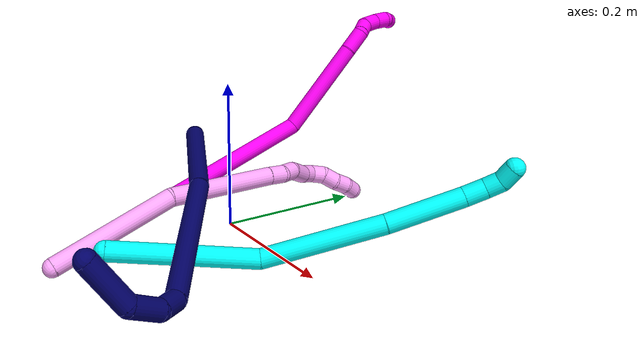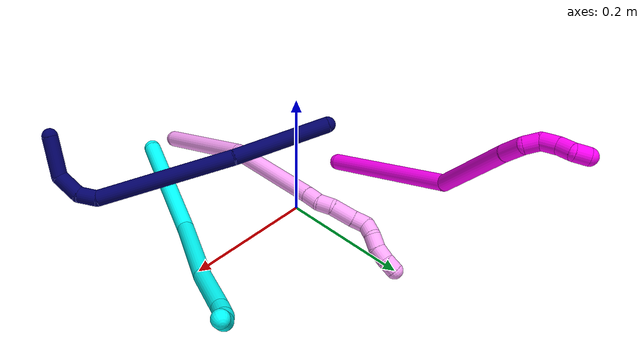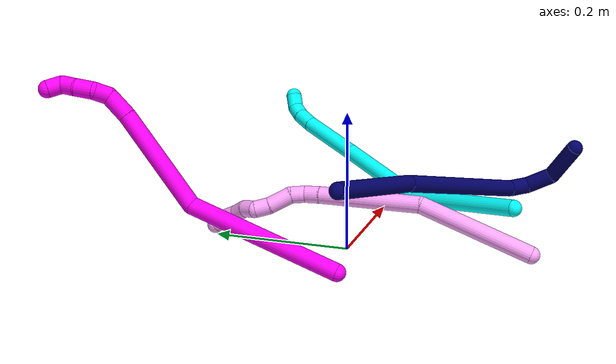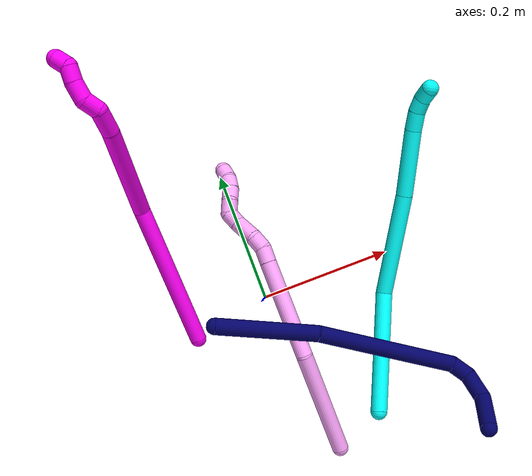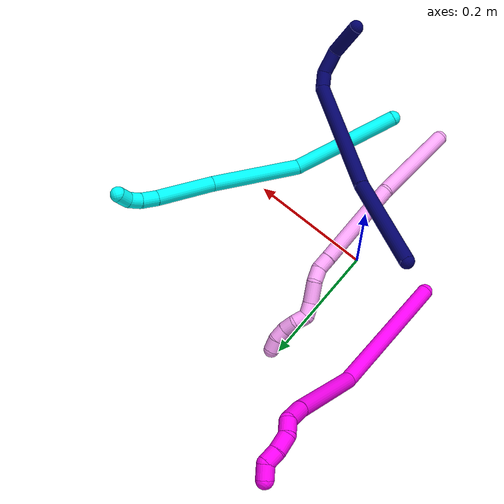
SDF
<sdf version="1.7">
 <world name="default">
  <model name="3">
   <static>0</static>
   <link name="3">
    <collision name="collision-cylinder-e_1_1_4">
     <pose>0.016316 0.017245 0.08682 -0.196077 0.18228 -0.017977</pose>
     <geometry><cylinder><radius>0.0125</radius><length>0.180016</length></cylinder></geometry>
     <surface>
      <friction><ode><mu>1.16</mu><mu2>1.16</mu2><slip1>0</slip1><slip2>0</slip2></ode></friction>
      <contact><ode><kp>1e+06</kp><kd>1</kd><max_vel>0</max_vel><min_depth>0.001</min_depth></ode></contact>
     </surface>
    </collision>
    <visual name="visual-cylinder-e_1_1_4">
     <pose>0.016316 0.017245 0.08682 -0.196077 0.18228 -0.017977</pose>
     <geometry><cylinder><radius>0.0125</radius><length>0.180016</length></cylinder></geometry>
     <material><ambient>0.003922 1 0.996078 1</ambient></material>
    </visual>
    <collision name="collision-cylinder-e_2_4_5">
     <pose>0.023738 0.026837 0.249365 0.10072 -0.116327 -0.00587</pose>
     <geometry><cylinder><radius>0.0125</radius><length>0.153254</length></cylinder></geometry>
     <surface>
      <friction><ode><mu>1.16</mu><mu2>1.16</mu2><slip1>0</slip1><slip2>0</slip2></ode></friction>
      <contact><ode><kp>1e+06</kp><kd>1</kd><max_vel>0</max_vel><min_depth>0.001</min_depth></ode></contact>
     </surface>
    </collision>
    <visual name="visual-cylinder-e_2_4_5">
     <pose>0.023738 0.026837 0.249365 0.10072 -0.116327 -0.00587</pose>
     <geometry><cylinder><radius>0.0125</radius><length>0.153254</length></cylinder></geometry>
     <material><ambient>0.003922 1 0.996078 1</ambient></material>
    </visual>
    <collision name="collision-cylinder-e_3_5_6">
     <pose>0.006036 0.016643 0.372626 0.053424 -0.182962 -0.004902</pose>
     <geometry><cylinder><radius>0.0125</radius><length>0.096829</length></cylinder></geometry>
     <surface>
      <friction><ode><mu>1.16</mu><mu2>1.16</mu2><slip1>0</slip1><slip2>0</slip2></ode></friction>
      <contact><ode><kp>1e+06</kp><kd>1</kd><max_vel>0</max_vel><min_depth>0.001</min_depth></ode></contact>
     </surface>
    </collision>
    <visual name="visual-cylinder-e_3_5_6">
     <pose>0.006036 0.016643 0.372626 0.053424 -0.182962 -0.004902</pose>
     <geometry><cylinder><radius>0.0125</radius><length>0.096829</length></cylinder></geometry>
     <material><ambient>0.003922 1 0.996078 1</ambient></material>
    </visual>
    <collision name="collision-cylinder-e_4_6_7">
     <pose>-0.005766 0.012247 0.433403 0.13908 -0.220312 -0.015407</pose>
     <geometry><cylinder><radius>0.0125</radius><length>0.027398</length></cylinder></geometry>
     <surface>
      <friction><ode><mu>1.16</mu><mu2>1.16</mu2><slip1>0</slip1><slip2>0</slip2></ode></friction>
      <contact><ode><kp>1e+06</kp><kd>1</kd><max_vel>0</max_vel><min_depth>0.001</min_depth></ode></contact>
     </surface>
    </collision>
    <visual name="visual-cylinder-e_4_6_7">
     <pose>-0.005766 0.012247 0.433403 0.13908 -0.220312 -0.015407</pose>
     <geometry><cylinder><radius>0.0125</radius><length>0.027398</length></cylinder></geometry>
     <material><ambient>0.003922 1 0.996078 1</ambient></material>
    </visual>
    <collision name="collision-cylinder-e_5_7_8">
     <pose>-0.011121 0.006761 0.455954 0.372032 -0.231921 -0.043835</pose>
     <geometry><cylinder><radius>0.0125</radius><length>0.020541</length></cylinder></geometry>
     <surface>
      <friction><ode><mu>1.16</mu><mu2>1.16</mu2><slip1>0</slip1><slip2>0</slip2></ode></friction>
      <contact><ode><kp>1e+06</kp><kd>1</kd><max_vel>0</max_vel><min_depth>0.001</min_depth></ode></contact>
     </surface>
    </collision>
    <visual name="visual-cylinder-e_5_7_8">
     <pose>-0.011121 0.006761 0.455954 0.372032 -0.231921 -0.043835</pose>
     <geometry><cylinder><radius>0.0125</radius><length>0.020541</length></cylinder></geometry>
     <material><ambient>0.003922 1 0.996078 1</ambient></material>
    </visual>
    <collision name="collision-cylinder-e_6_8_2">
     <pose>-0.019075 -0.00346 0.472041 0.771345 -0.534485 -0.221413</pose>
     <geometry><cylinder><radius>0.0125</radius><length>0.021962</length></cylinder></geometry>
     <surface>
      <friction><ode><mu>1.16</mu><mu2>1.16</mu2><slip1>0</slip1><slip2>0</slip2></ode></friction>
      <contact><ode><kp>1e+06</kp><kd>1</kd><max_vel>0</max_vel><min_depth>0.001</min_depth></ode></contact>
     </surface>
    </collision>
    <visual name="visual-cylinder-e_6_8_2">
     <pose>-0.019075 -0.00346 0.472041 0.771345 -0.534485 -0.221413</pose>
     <geometry><cylinder><radius>0.0125</radius><length>0.021962</length></cylinder></geometry>
     <material><ambient>0.003922 1 0.996078 1</ambient></material>
    </visual>
    <collision name="collision-sphere-2">
     <pose>-0.024669 -0.010048 0.478816 0 -0 0</pose>
     <geometry><sphere><radius>0.0125</radius></sphere></geometry>
     <surface>
      <friction><ode><mu>1.16</mu><mu2>1.16</mu2><slip1>0</slip1><slip2>0</slip2></ode></friction>
      <contact><ode><kp>1e+06</kp><kd>1</kd><max_vel>0</max_vel><min_depth>0.001</min_depth></ode></contact>
     </surface>
    </collision>
    <visual name="visual-sphere-2">
     <pose>-0.024669 -0.010048 0.478816 0 -0 0</pose>
     <geometry><sphere><radius>0.0125</radius></sphere></geometry>
     <material><ambient>0.003922 1 0.996078 1</ambient></material>
    </visual>
    <collision name="collision-sphere-4">
     <pose>0.032632 0.03449 0.173641 0 -0 0</pose>
     <geometry><sphere><radius>0.0125</radius></sphere></geometry>
     <surface>
      <friction><ode><mu>1.16</mu><mu2>1.16</mu2><slip1>0</slip1><slip2>0</slip2></ode></friction>
      <contact><ode><kp>1e+06</kp><kd>1</kd><max_vel>0</max_vel><min_depth>0.001</min_depth></ode></contact>
     </surface>
    </collision>
    <visual name="visual-sphere-4">
     <pose>0.032632 0.03449 0.173641 0 -0 0</pose>
     <geometry><sphere><radius>0.0125</radius></sphere></geometry>
     <material><ambient>0.003922 1 0.996078 1</ambient></material>
    </visual>
    <collision name="collision-sphere-1">
     <geometry><sphere><radius>0.0125</radius></sphere></geometry>
     <surface>
      <friction><ode><mu>1.16</mu><mu2>1.16</mu2><slip1>0</slip1><slip2>0</slip2></ode></friction>
      <contact><ode><kp>1e+06</kp><kd>1</kd><max_vel>0</max_vel><min_depth>0.001</min_depth></ode></contact>
     </surface>
    </collision>
    <visual name="visual-sphere-1">
     <geometry><sphere><radius>0.0125</radius></sphere></geometry>
     <material><ambient>0.003922 1 0.996078 1</ambient></material>
    </visual>
    <collision name="collision-sphere-8">
     <pose>-0.013482 0.003127 0.465266 0 -0 0</pose>
     <geometry><sphere><radius>0.0125</radius></sphere></geometry>
     <surface>
      <friction><ode><mu>1.16</mu><mu2>1.16</mu2><slip1>0</slip1><slip2>0</slip2></ode></friction>
      <contact><ode><kp>1e+06</kp><kd>1</kd><max_vel>0</max_vel><min_depth>0.001</min_depth></ode></contact>
     </surface>
    </collision>
    <visual name="visual-sphere-8">
     <pose>-0.013482 0.003127 0.465266 0 -0 0</pose>
     <geometry><sphere><radius>0.0125</radius></sphere></geometry>
     <material><ambient>0.003922 1 0.996078 1</ambient></material>
    </visual>
    <collision name="collision-sphere-5">
     <pose>0.014844 0.019185 0.325088 0 -0 0</pose>
     <geometry><sphere><radius>0.0125</radius></sphere></geometry>
     <surface>
      <friction><ode><mu>1.16</mu><mu2>1.16</mu2><slip1>0</slip1><slip2>0</slip2></ode></friction>
      <contact><ode><kp>1e+06</kp><kd>1</kd><max_vel>0</max_vel><min_depth>0.001</min_depth></ode></contact>
     </surface>
    </collision>
    <visual name="visual-sphere-5">
     <pose>0.014844 0.019185 0.325088 0 -0 0</pose>
     <geometry><sphere><radius>0.0125</radius></sphere></geometry>
     <material><ambient>0.003922 1 0.996078 1</ambient></material>
    </visual>
    <collision name="collision-sphere-6">
     <pose>-0.002773 0.0141 0.420165 0 -0 0</pose>
     <geometry><sphere><radius>0.0125</radius></sphere></geometry>
     <surface>
      <friction><ode><mu>1.16</mu><mu2>1.16</mu2><slip1>0</slip1><slip2>0</slip2></ode></friction>
      <contact><ode><kp>1e+06</kp><kd>1</kd><max_vel>0</max_vel><min_depth>0.001</min_depth></ode></contact>
     </surface>
    </collision>
    <visual name="visual-sphere-6">
     <pose>-0.002773 0.0141 0.420165 0 -0 0</pose>
     <geometry><sphere><radius>0.0125</radius></sphere></geometry>
     <material><ambient>0.003922 1 0.996078 1</ambient></material>
    </visual>
    <collision name="collision-sphere-7">
     <pose>-0.00876 0.010394 0.446642 0 -0 0</pose>
     <geometry><sphere><radius>0.0125</radius></sphere></geometry>
     <surface>
      <friction><ode><mu>1.16</mu><mu2>1.16</mu2><slip1>0</slip1><slip2>0</slip2></ode></friction>
      <contact><ode><kp>1e+06</kp><kd>1</kd><max_vel>0</max_vel><min_depth>0.001</min_depth></ode></contact>
     </surface>
    </collision>
    <visual name="visual-sphere-7">
     <pose>-0.00876 0.010394 0.446642 0 -0 0</pose>
     <geometry><sphere><radius>0.0125</radius></sphere></geometry>
     <material><ambient>0.003922 1 0.996078 1</ambient></material>
    </visual>
    <inertial>
     <pose>0.012708 0.018454 0.243067 0 -0 0</pose>
     <mass>0.5</mass>
     <inertia>
      <ixx>0.000859</ixx>
      <ixy>0</ixy>
      <ixz>0</ixz>
      <iyy>0.000861</iyy>
      <iyz>0</iyz>
      <izz>-5.8e-05</izz>
     </inertia>
    </inertial>
   </link>
   <pose>0.100868 -0.220407 0.052137 -1.30751 1.0601 -0.270111</pose>
  </model>
  <model name="4">
   <static>0</static>
   <link name="4">
    <collision name="collision-cylinder-e_1_1_4">
     <pose>0.023287 0.079418 0.016361 -1.36763 0.279662 -0.228419</pose>
     <geometry><cylinder><radius>0.0125</radius><length>0.168727</length></cylinder></geometry>
     <surface>
      <friction><ode><mu>1.16</mu><mu2>1.16</mu2><slip1>0</slip1><slip2>0</slip2></ode></friction>
      <contact><ode><kp>1e+06</kp><kd>1</kd><max_vel>0</max_vel><min_depth>0.001</min_depth></ode></contact>
     </surface>
    </collision>
    <visual name="visual-cylinder-e_1_1_4">
     <pose>0.023287 0.079418 0.016361 -1.36763 0.279662 -0.228419</pose>
     <geometry><cylinder><radius>0.0125</radius><length>0.168727</length></cylinder></geometry>
     <material><ambient>1 0.65098 0.996078 1</ambient></material>
    </visual>
    <collision name="collision-cylinder-e_2_4_5">
     <pose>0.043236 0.232916 0.039133 -1.48448 -0.044857 0.041144</pose>
     <geometry><cylinder><radius>0.0125</radius><length>0.148862</length></cylinder></geometry>
     <surface>
      <friction><ode><mu>1.16</mu><mu2>1.16</mu2><slip1>0</slip1><slip2>0</slip2></ode></friction>
      <contact><ode><kp>1e+06</kp><kd>1</kd><max_vel>0</max_vel><min_depth>0.001</min_depth></ode></contact>
     </surface>
    </collision>
    <visual name="visual-cylinder-e_2_4_5">
     <pose>0.043236 0.232916 0.039133 -1.48448 -0.044857 0.041144</pose>
     <geometry><cylinder><radius>0.0125</radius><length>0.148862</length></cylinder></geometry>
     <material><ambient>1 0.65098 0.996078 1</ambient></material>
    </visual>
    <collision name="collision-cylinder-e_3_5_6">
     <pose>0.038937 0.31847 0.046108 -1.5216 -0.083483 0.079478</pose>
     <geometry><cylinder><radius>0.0125</radius><length>0.023058</length></cylinder></geometry>
     <surface>
      <friction><ode><mu>1.16</mu><mu2>1.16</mu2><slip1>0</slip1><slip2>0</slip2></ode></friction>
      <contact><ode><kp>1e+06</kp><kd>1</kd><max_vel>0</max_vel><min_depth>0.001</min_depth></ode></contact>
     </surface>
    </collision>
    <visual name="visual-cylinder-e_3_5_6">
     <pose>0.038937 0.31847 0.046108 -1.5216 -0.083483 0.079478</pose>
     <geometry><cylinder><radius>0.0125</radius><length>0.023058</length></cylinder></geometry>
     <material><ambient>1 0.65098 0.996078 1</ambient></material>
    </visual>
    <collision name="collision-cylinder-e_4_6_7">
     <pose>0.035747 0.339521 0.050712 -1.17165 -0.211276 0.140479</pose>
     <geometry><cylinder><radius>0.0125</radius><length>0.021258</length></cylinder></geometry>
     <surface>
      <friction><ode><mu>1.16</mu><mu2>1.16</mu2><slip1>0</slip1><slip2>0</slip2></ode></friction>
      <contact><ode><kp>1e+06</kp><kd>1</kd><max_vel>0</max_vel><min_depth>0.001</min_depth></ode></contact>
     </surface>
    </collision>
    <visual name="visual-cylinder-e_4_6_7">
     <pose>0.035747 0.339521 0.050712 -1.17165 -0.211276 0.140479</pose>
     <geometry><cylinder><radius>0.0125</radius><length>0.021258</length></cylinder></geometry>
     <material><ambient>1 0.65098 0.996078 1</ambient></material>
    </visual>
    <collision name="collision-cylinder-e_5_7_8">
     <pose>0.023451 0.362197 0.060134 -1.18092 -0.617891 0.421473</pose>
     <geometry><cylinder><radius>0.0125</radius><length>0.034753</length></cylinder></geometry>
     <surface>
      <friction><ode><mu>1.16</mu><mu2>1.16</mu2><slip1>0</slip1><slip2>0</slip2></ode></friction>
      <contact><ode><kp>1e+06</kp><kd>1</kd><max_vel>0</max_vel><min_depth>0.001</min_depth></ode></contact>
     </surface>
    </collision>
    <visual name="visual-cylinder-e_5_7_8">
     <pose>0.023451 0.362197 0.060134 -1.18092 -0.617891 0.421473</pose>
     <geometry><cylinder><radius>0.0125</radius><length>0.034753</length></cylinder></geometry>
     <material><ambient>1 0.65098 0.996078 1</ambient></material>
    </visual>
    <collision name="collision-cylinder-e_6_8_9">
     <pose>0.009271 0.384551 0.068988 -1.2119 -0.394426 0.27515</pose>
     <geometry><cylinder><radius>0.0125</radius><length>0.021411</length></cylinder></geometry>
     <surface>
      <friction><ode><mu>1.16</mu><mu2>1.16</mu2><slip1>0</slip1><slip2>0</slip2></ode></friction>
      <contact><ode><kp>1e+06</kp><kd>1</kd><max_vel>0</max_vel><min_depth>0.001</min_depth></ode></contact>
     </surface>
    </collision>
    <visual name="visual-cylinder-e_6_8_9">
     <pose>0.009271 0.384551 0.068988 -1.2119 -0.394426 0.27515</pose>
     <geometry><cylinder><radius>0.0125</radius><length>0.021411</length></cylinder></geometry>
     <material><ambient>1 0.65098 0.996078 1</ambient></material>
    </visual>
    <collision name="collision-cylinder-e_7_9_10">
     <pose>0.004616 0.403391 0.068846 -1.93133 -0.052811 0.076331</pose>
     <geometry><cylinder><radius>0.0125</radius><length>0.020517</length></cylinder></geometry>
     <surface>
      <friction><ode><mu>1.16</mu><mu2>1.16</mu2><slip1>0</slip1><slip2>0</slip2></ode></friction>
      <contact><ode><kp>1e+06</kp><kd>1</kd><max_vel>0</max_vel><min_depth>0.001</min_depth></ode></contact>
     </surface>
    </collision>
    <visual name="visual-cylinder-e_7_9_10">
     <pose>0.004616 0.403391 0.068846 -1.93133 -0.052811 0.076331</pose>
     <geometry><cylinder><radius>0.0125</radius><length>0.020517</length></cylinder></geometry>
     <material><ambient>1 0.65098 0.996078 1</ambient></material>
    </visual>
    <collision name="collision-cylinder-e_8_10_11">
     <pose>-0.000211 0.421287 0.060644 -2.07524 -0.423996 0.699386</pose>
     <geometry><cylinder><radius>0.0125</radius><length>0.020831</length></cylinder></geometry>
     <surface>
      <friction><ode><mu>1.16</mu><mu2>1.16</mu2><slip1>0</slip1><slip2>0</slip2></ode></friction>
      <contact><ode><kp>1e+06</kp><kd>1</kd><max_vel>0</max_vel><min_depth>0.001</min_depth></ode></contact>
     </surface>
    </collision>
    <visual name="visual-cylinder-e_8_10_11">
     <pose>-0.000211 0.421287 0.060644 -2.07524 -0.423996 0.699386</pose>
     <geometry><cylinder><radius>0.0125</radius><length>0.020831</length></cylinder></geometry>
     <material><ambient>1 0.65098 0.996078 1</ambient></material>
    </visual>
    <collision name="collision-cylinder-e_9_11_12">
     <pose>-0.008728 0.438624 0.054173 -1.77642 -0.43033 0.525252</pose>
     <geometry><cylinder><radius>0.0125</radius><length>0.020291</length></cylinder></geometry>
     <surface>
      <friction><ode><mu>1.16</mu><mu2>1.16</mu2><slip1>0</slip1><slip2>0</slip2></ode></friction>
      <contact><ode><kp>1e+06</kp><kd>1</kd><max_vel>0</max_vel><min_depth>0.001</min_depth></ode></contact>
     </surface>
    </collision>
    <visual name="visual-cylinder-e_9_11_12">
     <pose>-0.008728 0.438624 0.054173 -1.77642 -0.43033 0.525252</pose>
     <geometry><cylinder><radius>0.0125</radius><length>0.020291</length></cylinder></geometry>
     <material><ambient>1 0.65098 0.996078 1</ambient></material>
    </visual>
    <collision name="collision-cylinder-e_10_12_2">
     <pose>-0.019466 0.455436 0.052217 -1.58021 -0.696018 0.702073</pose>
     <geometry><cylinder><radius>0.0125</radius><length>0.020292</length></cylinder></geometry>
     <surface>
      <friction><ode><mu>1.16</mu><mu2>1.16</mu2><slip1>0</slip1><slip2>0</slip2></ode></friction>
      <contact><ode><kp>1e+06</kp><kd>1</kd><max_vel>0</max_vel><min_depth>0.001</min_depth></ode></contact>
     </surface>
    </collision>
    <visual name="visual-cylinder-e_10_12_2">
     <pose>-0.019466 0.455436 0.052217 -1.58021 -0.696018 0.702073</pose>
     <geometry><cylinder><radius>0.0125</radius><length>0.020292</length></cylinder></geometry>
     <material><ambient>1 0.65098 0.996078 1</ambient></material>
    </visual>
    <collision name="collision-sphere-2">
     <pose>-0.025971 0.463222 0.052144 0 -0 0</pose>
     <geometry><sphere><radius>0.0125</radius></sphere></geometry>
     <surface>
      <friction><ode><mu>1.16</mu><mu2>1.16</mu2><slip1>0</slip1><slip2>0</slip2></ode></friction>
      <contact><ode><kp>1e+06</kp><kd>1</kd><max_vel>0</max_vel><min_depth>0.001</min_depth></ode></contact>
     </surface>
    </collision>
    <visual name="visual-sphere-2">
     <pose>-0.025971 0.463222 0.052144 0 -0 0</pose>
     <geometry><sphere><radius>0.0125</radius></sphere></geometry>
     <material><ambient>1 0.65098 0.996078 1</ambient></material>
    </visual>
    <collision name="collision-sphere-12">
     <pose>-0.012961 0.447651 0.05229 0 -0 0</pose>
     <geometry><sphere><radius>0.0125</radius></sphere></geometry>
     <surface>
      <friction><ode><mu>1.16</mu><mu2>1.16</mu2><slip1>0</slip1><slip2>0</slip2></ode></friction>
      <contact><ode><kp>1e+06</kp><kd>1</kd><max_vel>0</max_vel><min_depth>0.001</min_depth></ode></contact>
     </surface>
    </collision>
    <visual name="visual-sphere-12">
     <pose>-0.012961 0.447651 0.05229 0 -0 0</pose>
     <geometry><sphere><radius>0.0125</radius></sphere></geometry>
     <material><ambient>1 0.65098 0.996078 1</ambient></material>
    </visual>
    <collision name="collision-sphere-11">
     <pose>-0.004496 0.429598 0.056056 0 -0 0</pose>
     <geometry><sphere><radius>0.0125</radius></sphere></geometry>
     <surface>
      <friction><ode><mu>1.16</mu><mu2>1.16</mu2><slip1>0</slip1><slip2>0</slip2></ode></friction>
      <contact><ode><kp>1e+06</kp><kd>1</kd><max_vel>0</max_vel><min_depth>0.001</min_depth></ode></contact>
     </surface>
    </collision>
    <visual name="visual-sphere-11">
     <pose>-0.004496 0.429598 0.056056 0 -0 0</pose>
     <geometry><sphere><radius>0.0125</radius></sphere></geometry>
     <material><ambient>1 0.65098 0.996078 1</ambient></material>
    </visual>
    <collision name="collision-sphere-10">
     <pose>0.004074 0.412976 0.065232 0 -0 0</pose>
     <geometry><sphere><radius>0.0125</radius></sphere></geometry>
     <surface>
      <friction><ode><mu>1.16</mu><mu2>1.16</mu2><slip1>0</slip1><slip2>0</slip2></ode></friction>
      <contact><ode><kp>1e+06</kp><kd>1</kd><max_vel>0</max_vel><min_depth>0.001</min_depth></ode></contact>
     </surface>
    </collision>
    <visual name="visual-sphere-10">
     <pose>0.004074 0.412976 0.065232 0 -0 0</pose>
     <geometry><sphere><radius>0.0125</radius></sphere></geometry>
     <material><ambient>1 0.65098 0.996078 1</ambient></material>
    </visual>
    <collision name="collision-sphere-9">
     <pose>0.005157 0.393805 0.07246 0 -0 0</pose>
     <geometry><sphere><radius>0.0125</radius></sphere></geometry>
     <surface>
      <friction><ode><mu>1.16</mu><mu2>1.16</mu2><slip1>0</slip1><slip2>0</slip2></ode></friction>
      <contact><ode><kp>1e+06</kp><kd>1</kd><max_vel>0</max_vel><min_depth>0.001</min_depth></ode></contact>
     </surface>
    </collision>
    <visual name="visual-sphere-9">
     <pose>0.005157 0.393805 0.07246 0 -0 0</pose>
     <geometry><sphere><radius>0.0125</radius></sphere></geometry>
     <material><ambient>1 0.65098 0.996078 1</ambient></material>
    </visual>
    <collision name="collision-sphere-4">
     <pose>0.046574 0.158836 0.032722 0 -0 0</pose>
     <geometry><sphere><radius>0.0125</radius></sphere></geometry>
     <surface>
      <friction><ode><mu>1.16</mu><mu2>1.16</mu2><slip1>0</slip1><slip2>0</slip2></ode></friction>
      <contact><ode><kp>1e+06</kp><kd>1</kd><max_vel>0</max_vel><min_depth>0.001</min_depth></ode></contact>
     </surface>
    </collision>
    <visual name="visual-sphere-4">
     <pose>0.046574 0.158836 0.032722 0 -0 0</pose>
     <geometry><sphere><radius>0.0125</radius></sphere></geometry>
     <material><ambient>1 0.65098 0.996078 1</ambient></material>
    </visual>
    <collision name="collision-sphere-1">
     <geometry><sphere><radius>0.0125</radius></sphere></geometry>
     <surface>
      <friction><ode><mu>1.16</mu><mu2>1.16</mu2><slip1>0</slip1><slip2>0</slip2></ode></friction>
      <contact><ode><kp>1e+06</kp><kd>1</kd><max_vel>0</max_vel><min_depth>0.001</min_depth></ode></contact>
     </surface>
    </collision>
    <visual name="visual-sphere-1">
     <geometry><sphere><radius>0.0125</radius></sphere></geometry>
     <material><ambient>1 0.65098 0.996078 1</ambient></material>
    </visual>
    <collision name="collision-sphere-8">
     <pose>0.013385 0.375297 0.065517 0 -0 0</pose>
     <geometry><sphere><radius>0.0125</radius></sphere></geometry>
     <surface>
      <friction><ode><mu>1.16</mu><mu2>1.16</mu2><slip1>0</slip1><slip2>0</slip2></ode></friction>
      <contact><ode><kp>1e+06</kp><kd>1</kd><max_vel>0</max_vel><min_depth>0.001</min_depth></ode></contact>
     </surface>
    </collision>
    <visual name="visual-sphere-8">
     <pose>0.013385 0.375297 0.065517 0 -0 0</pose>
     <geometry><sphere><radius>0.0125</radius></sphere></geometry>
     <material><ambient>1 0.65098 0.996078 1</ambient></material>
    </visual>
    <collision name="collision-sphere-5">
     <pose>0.039899 0.306995 0.045543 0 -0 0</pose>
     <geometry><sphere><radius>0.0125</radius></sphere></geometry>
     <surface>
      <friction><ode><mu>1.16</mu><mu2>1.16</mu2><slip1>0</slip1><slip2>0</slip2></ode></friction>
      <contact><ode><kp>1e+06</kp><kd>1</kd><max_vel>0</max_vel><min_depth>0.001</min_depth></ode></contact>
     </surface>
    </collision>
    <visual name="visual-sphere-5">
     <pose>0.039899 0.306995 0.045543 0 -0 0</pose>
     <geometry><sphere><radius>0.0125</radius></sphere></geometry>
     <material><ambient>1 0.65098 0.996078 1</ambient></material>
    </visual>
    <collision name="collision-sphere-6">
     <pose>0.037976 0.329945 0.046673 0 -0 0</pose>
     <geometry><sphere><radius>0.0125</radius></sphere></geometry>
     <surface>
      <friction><ode><mu>1.16</mu><mu2>1.16</mu2><slip1>0</slip1><slip2>0</slip2></ode></friction>
      <contact><ode><kp>1e+06</kp><kd>1</kd><max_vel>0</max_vel><min_depth>0.001</min_depth></ode></contact>
     </surface>
    </collision>
    <visual name="visual-sphere-6">
     <pose>0.037976 0.329945 0.046673 0 -0 0</pose>
     <geometry><sphere><radius>0.0125</radius></sphere></geometry>
     <material><ambient>1 0.65098 0.996078 1</ambient></material>
    </visual>
    <collision name="collision-sphere-7">
     <pose>0.033518 0.349096 0.054751 0 -0 0</pose>
     <geometry><sphere><radius>0.0125</radius></sphere></geometry>
     <surface>
      <friction><ode><mu>1.16</mu><mu2>1.16</mu2><slip1>0</slip1><slip2>0</slip2></ode></friction>
      <contact><ode><kp>1e+06</kp><kd>1</kd><max_vel>0</max_vel><min_depth>0.001</min_depth></ode></contact>
     </surface>
    </collision>
    <visual name="visual-sphere-7">
     <pose>0.033518 0.349096 0.054751 0 -0 0</pose>
     <geometry><sphere><radius>0.0125</radius></sphere></geometry>
     <material><ambient>1 0.65098 0.996078 1</ambient></material>
    </visual>
    <inertial>
     <pose>0.02511 0.237296 0.038257 0 -0 0</pose>
     <mass>0.5</mass>
     <inertia><ixx>0.0006</ixx><ixy>0</ixy><ixz>0</ixz><iyy>9.8e-05</iyy><iyz>0</iyz><izz>-0.000765</izz></inertia>
    </inertial>
   </link>
   <pose>0.026435 -0.259521 0.011498 0.036838 -1.21167 -0.121774</pose>
  </model>
  <model name="7">
   <static>0</static>
   <link name="7">
    <collision name="collision-cylinder-e_1_1_4">
     <pose>-0.007891 -0.067796 -0.034076 2.03654 -0.103628 -0.167823</pose>
     <geometry><cylinder><radius>0.0125</radius><length>0.152574</length></cylinder></geometry>
     <surface>
      <friction><ode><mu>1.16</mu><mu2>1.16</mu2><slip1>0</slip1><slip2>0</slip2></ode></friction>
      <contact><ode><kp>1e+06</kp><kd>1</kd><max_vel>0</max_vel><min_depth>0.001</min_depth></ode></contact>
     </surface>
    </collision>
    <visual name="visual-cylinder-e_1_1_4">
     <pose>-0.007891 -0.067796 -0.034076 2.03654 -0.103628 -0.167823</pose>
     <geometry><cylinder><radius>0.0125</radius><length>0.152574</length></cylinder></geometry>
     <material><ambient>0.003922 0 0.403922 1</ambient></material>
    </visual>
    <collision name="collision-cylinder-e_2_4_5">
     <pose>-0.014807 -0.237018 -0.104161 1.91195 0.009067 0.01284</pose>
     <geometry><cylinder><radius>0.0125</radius><length>0.215266</length></cylinder></geometry>
     <surface>
      <friction><ode><mu>1.16</mu><mu2>1.16</mu2><slip1>0</slip1><slip2>0</slip2></ode></friction>
      <contact><ode><kp>1e+06</kp><kd>1</kd><max_vel>0</max_vel><min_depth>0.001</min_depth></ode></contact>
     </surface>
    </collision>
    <visual name="visual-cylinder-e_2_4_5">
     <pose>-0.014807 -0.237018 -0.104161 1.91195 0.009067 0.01284</pose>
     <geometry><cylinder><radius>0.0125</radius><length>0.215266</length></cylinder></geometry>
     <material><ambient>0.003922 0 0.403922 1</ambient></material>
    </visual>
    <collision name="collision-cylinder-e_3_5_6">
     <pose>-0.006877 -0.349971 -0.146065 2.04357 0.492881 0.780256</pose>
     <geometry><cylinder><radius>0.0125</radius><length>0.029392</length></cylinder></geometry>
     <surface>
      <friction><ode><mu>1.16</mu><mu2>1.16</mu2><slip1>0</slip1><slip2>0</slip2></ode></friction>
      <contact><ode><kp>1e+06</kp><kd>1</kd><max_vel>0</max_vel><min_depth>0.001</min_depth></ode></contact>
     </surface>
    </collision>
    <visual name="visual-cylinder-e_3_5_6">
     <pose>-0.006877 -0.349971 -0.146065 2.04357 0.492881 0.780256</pose>
     <geometry><cylinder><radius>0.0125</radius><length>0.029392</length></cylinder></geometry>
     <material><ambient>0.003922 0 0.403922 1</ambient></material>
    </visual>
    <collision name="collision-cylinder-e_4_6_7">
     <pose>0.01685 -0.369549 -0.159709 2.33695 0.983133 1.79848</pose>
     <geometry><cylinder><radius>0.0125</radius><length>0.040309</length></cylinder></geometry>
     <surface>
      <friction><ode><mu>1.16</mu><mu2>1.16</mu2><slip1>0</slip1><slip2>0</slip2></ode></friction>
      <contact><ode><kp>1e+06</kp><kd>1</kd><max_vel>0</max_vel><min_depth>0.001</min_depth></ode></contact>
     </surface>
    </collision>
    <visual name="visual-cylinder-e_4_6_7">
     <pose>0.01685 -0.369549 -0.159709 2.33695 0.983133 1.79848</pose>
     <geometry><cylinder><radius>0.0125</radius><length>0.040309</length></cylinder></geometry>
     <material><ambient>0.003922 0 0.403922 1</ambient></material>
    </visual>
    <collision name="collision-cylinder-e_5_7_2">
     <pose>0.060803 -0.370103 -0.180884 -2.63232 1.05585 -2.30195</pose>
     <geometry><cylinder><radius>0.0125</radius><length>0.062459</length></cylinder></geometry>
     <surface>
      <friction><ode><mu>1.16</mu><mu2>1.16</mu2><slip1>0</slip1><slip2>0</slip2></ode></friction>
      <contact><ode><kp>1e+06</kp><kd>1</kd><max_vel>0</max_vel><min_depth>0.001</min_depth></ode></contact>
     </surface>
    </collision>
    <visual name="visual-cylinder-e_5_7_2">
     <pose>0.060803 -0.370103 -0.180884 -2.63232 1.05585 -2.30195</pose>
     <geometry><cylinder><radius>0.0125</radius><length>0.062459</length></cylinder></geometry>
     <material><ambient>0.003922 0 0.403922 1</ambient></material>
    </visual>
    <collision name="collision-sphere-2">
     <pose>0.087982 -0.362604 -0.194313 0 -0 0</pose>
     <geometry><sphere><radius>0.0125</radius></sphere></geometry>
     <surface>
      <friction><ode><mu>1.16</mu><mu2>1.16</mu2><slip1>0</slip1><slip2>0</slip2></ode></friction>
      <contact><ode><kp>1e+06</kp><kd>1</kd><max_vel>0</max_vel><min_depth>0.001</min_depth></ode></contact>
     </surface>
    </collision>
    <visual name="visual-sphere-2">
     <pose>0.087982 -0.362604 -0.194313 0 -0 0</pose>
     <geometry><sphere><radius>0.0125</radius></sphere></geometry>
     <material><ambient>0.003922 0 0.403922 1</ambient></material>
    </visual>
    <collision name="collision-sphere-7">
     <pose>0.033623 -0.377601 -0.167456 0 -0 0</pose>
     <geometry><sphere><radius>0.0125</radius></sphere></geometry>
     <surface>
      <friction><ode><mu>1.16</mu><mu2>1.16</mu2><slip1>0</slip1><slip2>0</slip2></ode></friction>
      <contact><ode><kp>1e+06</kp><kd>1</kd><max_vel>0</max_vel><min_depth>0.001</min_depth></ode></contact>
     </surface>
    </collision>
    <visual name="visual-sphere-7">
     <pose>0.033623 -0.377601 -0.167456 0 -0 0</pose>
     <geometry><sphere><radius>0.0125</radius></sphere></geometry>
     <material><ambient>0.003922 0 0.403922 1</ambient></material>
    </visual>
    <collision name="collision-sphere-6">
     <pose>7.6e-05 -0.361498 -0.151961 0 -0 0</pose>
     <geometry><sphere><radius>0.0125</radius></sphere></geometry>
     <surface>
      <friction><ode><mu>1.16</mu><mu2>1.16</mu2><slip1>0</slip1><slip2>0</slip2></ode></friction>
      <contact><ode><kp>1e+06</kp><kd>1</kd><max_vel>0</max_vel><min_depth>0.001</min_depth></ode></contact>
     </surface>
    </collision>
    <visual name="visual-sphere-6">
     <pose>7.6e-05 -0.361498 -0.151961 0 -0 0</pose>
     <geometry><sphere><radius>0.0125</radius></sphere></geometry>
     <material><ambient>0.003922 0 0.403922 1</ambient></material>
    </visual>
    <collision name="collision-sphere-5">
     <pose>-0.013831 -0.338444 -0.14017 0 -0 0</pose>
     <geometry><sphere><radius>0.0125</radius></sphere></geometry>
     <surface>
      <friction><ode><mu>1.16</mu><mu2>1.16</mu2><slip1>0</slip1><slip2>0</slip2></ode></friction>
      <contact><ode><kp>1e+06</kp><kd>1</kd><max_vel>0</max_vel><min_depth>0.001</min_depth></ode></contact>
     </surface>
    </collision>
    <visual name="visual-sphere-5">
     <pose>-0.013831 -0.338444 -0.14017 0 -0 0</pose>
     <geometry><sphere><radius>0.0125</radius></sphere></geometry>
     <material><ambient>0.003922 0 0.403922 1</ambient></material>
    </visual>
    <collision name="collision-sphere-1">
     <geometry><sphere><radius>0.0125</radius></sphere></geometry>
     <surface>
      <friction><ode><mu>1.16</mu><mu2>1.16</mu2><slip1>0</slip1><slip2>0</slip2></ode></friction>
      <contact><ode><kp>1e+06</kp><kd>1</kd><max_vel>0</max_vel><min_depth>0.001</min_depth></ode></contact>
     </surface>
    </collision>
    <visual name="visual-sphere-1">
     <geometry><sphere><radius>0.0125</radius></sphere></geometry>
     <material><ambient>0.003922 0 0.403922 1</ambient></material>
    </visual>
    <collision name="collision-sphere-4">
     <pose>-0.015783 -0.135592 -0.068151 0 -0 0</pose>
     <geometry><sphere><radius>0.0125</radius></sphere></geometry>
     <surface>
      <friction><ode><mu>1.16</mu><mu2>1.16</mu2><slip1>0</slip1><slip2>0</slip2></ode></friction>
      <contact><ode><kp>1e+06</kp><kd>1</kd><max_vel>0</max_vel><min_depth>0.001</min_depth></ode></contact>
     </surface>
    </collision>
    <visual name="visual-sphere-4">
     <pose>-0.015783 -0.135592 -0.068151 0 -0 0</pose>
     <geometry><sphere><radius>0.0125</radius></sphere></geometry>
     <material><ambient>0.003922 0 0.403922 1</ambient></material>
    </visual>
    <inertial>
     <pose>-0.000233 -0.219329 -0.0993 0 -0 0</pose>
     <mass>0.5</mass>
     <inertia>
      <ixx>0.001094</ixx>
      <ixy>0</ixy>
      <ixz>0</ixz>
      <iyy>-0.000455</iyy>
      <iyz>0</iyz>
      <izz>0.001041</izz>
     </inertia>
    </inertial>
   </link>
   <pose>-0.079137 -0.011312 0.112259 2.55045 -0.424923 -2.05659</pose>
  </model>
  <model name="10">
   <static>0</static>
   <link name="10">
    <collision name="collision-cylinder-e_1_1_4">
     <pose>-0.028382 -0.000216 0.106489 0.002032 -0.260466 -0.000266</pose>
     <geometry><cylinder><radius>0.0125</radius><length>0.220414</length></cylinder></geometry>
     <surface>
      <friction><ode><mu>1.16</mu><mu2>1.16</mu2><slip1>0</slip1><slip2>0</slip2></ode></friction>
      <contact><ode><kp>1e+06</kp><kd>1</kd><max_vel>0</max_vel><min_depth>0.001</min_depth></ode></contact>
     </surface>
    </collision>
    <visual name="visual-cylinder-e_1_1_4">
     <pose>-0.028382 -0.000216 0.106489 0.002032 -0.260466 -0.000266</pose>
     <geometry><cylinder><radius>0.0125</radius><length>0.220414</length></cylinder></geometry>
     <material><ambient>1 0 0.964706 1</ambient></material>
    </visual>
    <collision name="collision-cylinder-e_2_4_5">
     <pose>-0.097413 0.029164 0.270053 -0.478389 -0.563806 0.141019</pose>
     <geometry><cylinder><radius>0.0125</radius><length>0.15213</length></cylinder></geometry>
     <surface>
      <friction><ode><mu>1.16</mu><mu2>1.16</mu2><slip1>0</slip1><slip2>0</slip2></ode></friction>
      <contact><ode><kp>1e+06</kp><kd>1</kd><max_vel>0</max_vel><min_depth>0.001</min_depth></ode></contact>
     </surface>
    </collision>
    <visual name="visual-cylinder-e_2_4_5">
     <pose>-0.097413 0.029164 0.270053 -0.478389 -0.563806 0.141019</pose>
     <geometry><cylinder><radius>0.0125</radius><length>0.15213</length></cylinder></geometry>
     <material><ambient>1 0 0.964706 1</ambient></material>
    </visual>
    <collision name="collision-cylinder-e_3_5_6">
     <pose>-0.145824 0.065814 0.342153 -0.438879 -0.437387 0.099055</pose>
     <geometry><cylinder><radius>0.0125</radius><length>0.036646</length></cylinder></geometry>
     <surface>
      <friction><ode><mu>1.16</mu><mu2>1.16</mu2><slip1>0</slip1><slip2>0</slip2></ode></friction>
      <contact><ode><kp>1e+06</kp><kd>1</kd><max_vel>0</max_vel><min_depth>0.001</min_depth></ode></contact>
     </surface>
    </collision>
    <visual name="visual-cylinder-e_3_5_6">
     <pose>-0.145824 0.065814 0.342153 -0.438879 -0.437387 0.099055</pose>
     <geometry><cylinder><radius>0.0125</radius><length>0.036646</length></cylinder></geometry>
     <material><ambient>1 0 0.964706 1</ambient></material>
    </visual>
    <collision name="collision-cylinder-e_4_6_7">
     <pose>-0.151498 0.07706 0.367652 -0.38084 0.182886 -0.035347</pose>
     <geometry><cylinder><radius>0.0125</radius><length>0.022948</length></cylinder></geometry>
     <surface>
      <friction><ode><mu>1.16</mu><mu2>1.16</mu2><slip1>0</slip1><slip2>0</slip2></ode></friction>
      <contact><ode><kp>1e+06</kp><kd>1</kd><max_vel>0</max_vel><min_depth>0.001</min_depth></ode></contact>
     </surface>
    </collision>
    <visual name="visual-cylinder-e_4_6_7">
     <pose>-0.151498 0.07706 0.367652 -0.38084 0.182886 -0.035347</pose>
     <geometry><cylinder><radius>0.0125</radius><length>0.022948</length></cylinder></geometry>
     <material><ambient>1 0 0.964706 1</ambient></material>
    </visual>
    <collision name="collision-cylinder-e_5_7_8">
     <pose>-0.150067 0.079904 0.390628 0.107549 -0.052109 -0.002805</pose>
     <geometry><cylinder><radius>0.0125</radius><length>0.025182</length></cylinder></geometry>
     <surface>
      <friction><ode><mu>1.16</mu><mu2>1.16</mu2><slip1>0</slip1><slip2>0</slip2></ode></friction>
      <contact><ode><kp>1e+06</kp><kd>1</kd><max_vel>0</max_vel><min_depth>0.001</min_depth></ode></contact>
     </surface>
    </collision>
    <visual name="visual-cylinder-e_5_7_8">
     <pose>-0.150067 0.079904 0.390628 0.107549 -0.052109 -0.002805</pose>
     <geometry><cylinder><radius>0.0125</radius><length>0.025182</length></cylinder></geometry>
     <material><ambient>1 0 0.964706 1</ambient></material>
    </visual>
    <collision name="collision-cylinder-e_6_8_9">
     <pose>-0.152806 0.075968 0.413366 0.247537 -0.194835 -0.024314</pose>
     <geometry><cylinder><radius>0.0125</radius><length>0.021526</length></cylinder></geometry>
     <surface>
      <friction><ode><mu>1.16</mu><mu2>1.16</mu2><slip1>0</slip1><slip2>0</slip2></ode></friction>
      <contact><ode><kp>1e+06</kp><kd>1</kd><max_vel>0</max_vel><min_depth>0.001</min_depth></ode></contact>
     </surface>
    </collision>
    <visual name="visual-cylinder-e_6_8_9">
     <pose>-0.152806 0.075968 0.413366 0.247537 -0.194835 -0.024314</pose>
     <geometry><cylinder><radius>0.0125</radius><length>0.021526</length></cylinder></geometry>
     <material><ambient>1 0 0.964706 1</ambient></material>
    </visual>
    <collision name="collision-cylinder-e_7_9_2">
     <pose>-0.149198 0.071795 0.432377 0.178743 0.56823 0.052323</pose>
     <geometry><cylinder><radius>0.0125</radius><length>0.021155</length></cylinder></geometry>
     <surface>
      <friction><ode><mu>1.16</mu><mu2>1.16</mu2><slip1>0</slip1><slip2>0</slip2></ode></friction>
      <contact><ode><kp>1e+06</kp><kd>1</kd><max_vel>0</max_vel><min_depth>0.001</min_depth></ode></contact>
     </surface>
    </collision>
    <visual name="visual-cylinder-e_7_9_2">
     <pose>-0.149198 0.071795 0.432377 0.178743 0.56823 0.052323</pose>
     <geometry><cylinder><radius>0.0125</radius><length>0.021155</length></cylinder></geometry>
     <material><ambient>1 0 0.964706 1</ambient></material>
    </visual>
    <collision name="collision-sphere-2">
     <pose>-0.143506 0.07021 0.44115 0 -0 0</pose>
     <geometry><sphere><radius>0.0125</radius></sphere></geometry>
     <surface>
      <friction><ode><mu>1.16</mu><mu2>1.16</mu2><slip1>0</slip1><slip2>0</slip2></ode></friction>
      <contact><ode><kp>1e+06</kp><kd>1</kd><max_vel>0</max_vel><min_depth>0.001</min_depth></ode></contact>
     </surface>
    </collision>
    <visual name="visual-sphere-2">
     <pose>-0.143506 0.07021 0.44115 0 -0 0</pose>
     <geometry><sphere><radius>0.0125</radius></sphere></geometry>
     <material><ambient>1 0 0.964706 1</ambient></material>
    </visual>
    <collision name="collision-sphere-9">
     <pose>-0.15489 0.07338 0.423604 0 -0 0</pose>
     <geometry><sphere><radius>0.0125</radius></sphere></geometry>
     <surface>
      <friction><ode><mu>1.16</mu><mu2>1.16</mu2><slip1>0</slip1><slip2>0</slip2></ode></friction>
      <contact><ode><kp>1e+06</kp><kd>1</kd><max_vel>0</max_vel><min_depth>0.001</min_depth></ode></contact>
     </surface>
    </collision>
    <visual name="visual-sphere-9">
     <pose>-0.15489 0.07338 0.423604 0 -0 0</pose>
     <geometry><sphere><radius>0.0125</radius></sphere></geometry>
     <material><ambient>1 0 0.964706 1</ambient></material>
    </visual>
    <collision name="collision-sphere-4">
     <pose>-0.056763 -0.000433 0.212979 0 -0 0</pose>
     <geometry><sphere><radius>0.0125</radius></sphere></geometry>
     <surface>
      <friction><ode><mu>1.16</mu><mu2>1.16</mu2><slip1>0</slip1><slip2>0</slip2></ode></friction>
      <contact><ode><kp>1e+06</kp><kd>1</kd><max_vel>0</max_vel><min_depth>0.001</min_depth></ode></contact>
     </surface>
    </collision>
    <visual name="visual-sphere-4">
     <pose>-0.056763 -0.000433 0.212979 0 -0 0</pose>
     <geometry><sphere><radius>0.0125</radius></sphere></geometry>
     <material><ambient>1 0 0.964706 1</ambient></material>
    </visual>
    <collision name="collision-sphere-1">
     <geometry><sphere><radius>0.0125</radius></sphere></geometry>
     <surface>
      <friction><ode><mu>1.16</mu><mu2>1.16</mu2><slip1>0</slip1><slip2>0</slip2></ode></friction>
      <contact><ode><kp>1e+06</kp><kd>1</kd><max_vel>0</max_vel><min_depth>0.001</min_depth></ode></contact>
     </surface>
    </collision>
    <visual name="visual-sphere-1">
     <geometry><sphere><radius>0.0125</radius></sphere></geometry>
     <material><ambient>1 0 0.964706 1</ambient></material>
    </visual>
    <collision name="collision-sphere-8">
     <pose>-0.150723 0.078555 0.403129 0 -0 0</pose>
     <geometry><sphere><radius>0.0125</radius></sphere></geometry>
     <surface>
      <friction><ode><mu>1.16</mu><mu2>1.16</mu2><slip1>0</slip1><slip2>0</slip2></ode></friction>
      <contact><ode><kp>1e+06</kp><kd>1</kd><max_vel>0</max_vel><min_depth>0.001</min_depth></ode></contact>
     </surface>
    </collision>
    <visual name="visual-sphere-8">
     <pose>-0.150723 0.078555 0.403129 0 -0 0</pose>
     <geometry><sphere><radius>0.0125</radius></sphere></geometry>
     <material><ambient>1 0 0.964706 1</ambient></material>
    </visual>
    <collision name="collision-sphere-5">
     <pose>-0.138062 0.058761 0.327128 0 -0 0</pose>
     <geometry><sphere><radius>0.0125</radius></sphere></geometry>
     <surface>
      <friction><ode><mu>1.16</mu><mu2>1.16</mu2><slip1>0</slip1><slip2>0</slip2></ode></friction>
      <contact><ode><kp>1e+06</kp><kd>1</kd><max_vel>0</max_vel><min_depth>0.001</min_depth></ode></contact>
     </surface>
    </collision>
    <visual name="visual-sphere-5">
     <pose>-0.138062 0.058761 0.327128 0 -0 0</pose>
     <geometry><sphere><radius>0.0125</radius></sphere></geometry>
     <material><ambient>1 0 0.964706 1</ambient></material>
    </visual>
    <collision name="collision-sphere-6">
     <pose>-0.153585 0.072867 0.357177 0 -0 0</pose>
     <geometry><sphere><radius>0.0125</radius></sphere></geometry>
     <surface>
      <friction><ode><mu>1.16</mu><mu2>1.16</mu2><slip1>0</slip1><slip2>0</slip2></ode></friction>
      <contact><ode><kp>1e+06</kp><kd>1</kd><max_vel>0</max_vel><min_depth>0.001</min_depth></ode></contact>
     </surface>
    </collision>
    <visual name="visual-sphere-6">
     <pose>-0.153585 0.072867 0.357177 0 -0 0</pose>
     <geometry><sphere><radius>0.0125</radius></sphere></geometry>
     <material><ambient>1 0 0.964706 1</ambient></material>
    </visual>
    <collision name="collision-sphere-7">
     <pose>-0.149411 0.081254 0.378126 0 -0 0</pose>
     <geometry><sphere><radius>0.0125</radius></sphere></geometry>
     <surface>
      <friction><ode><mu>1.16</mu><mu2>1.16</mu2><slip1>0</slip1><slip2>0</slip2></ode></friction>
      <contact><ode><kp>1e+06</kp><kd>1</kd><max_vel>0</max_vel><min_depth>0.001</min_depth></ode></contact>
     </surface>
    </collision>
    <visual name="visual-sphere-7">
     <pose>-0.149411 0.081254 0.378126 0 -0 0</pose>
     <geometry><sphere><radius>0.0125</radius></sphere></geometry>
     <material><ambient>1 0 0.964706 1</ambient></material>
    </visual>
    <inertial>
     <pose>-0.08024 0.027471 0.226824 0 -0 0</pose>
     <mass>0.5</mass>
     <inertia>
      <ixx>0.001158</ixx>
      <ixy>0</ixy>
      <ixz>0</ixz>
      <iyy>0.001228</iyy>
      <iyz>0</iyz>
      <izz>0.000311</izz>
     </inertia>
    </inertial>
   </link>
   <pose>-0.119704 -0.02318 0.011543 1.32533 0.554381 -3.03069</pose>
  </model>
 </world>
</sdf>
